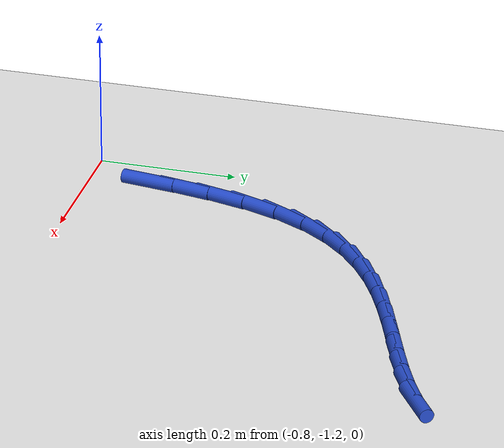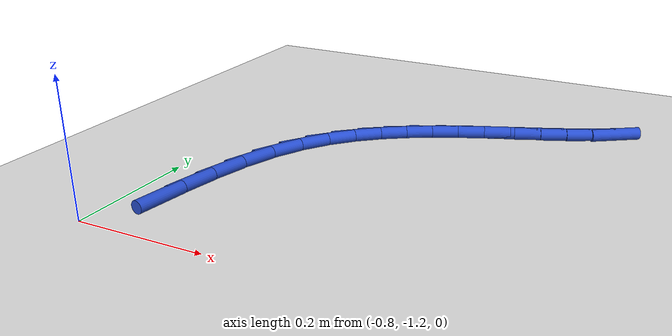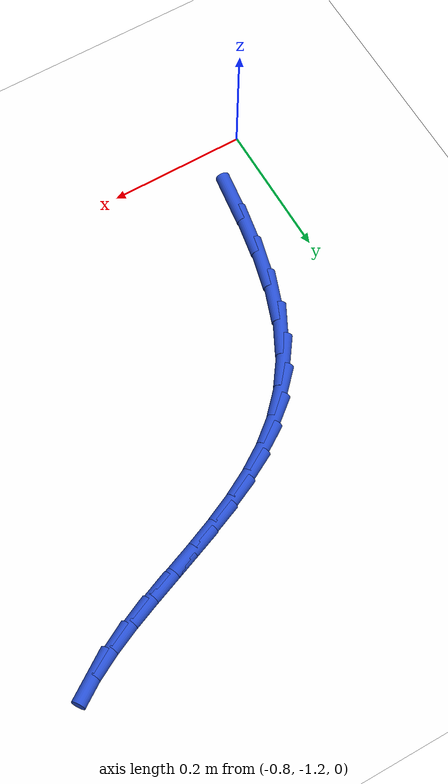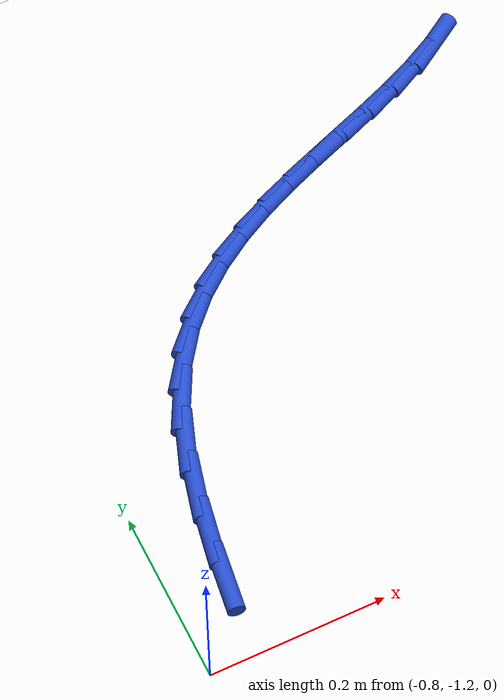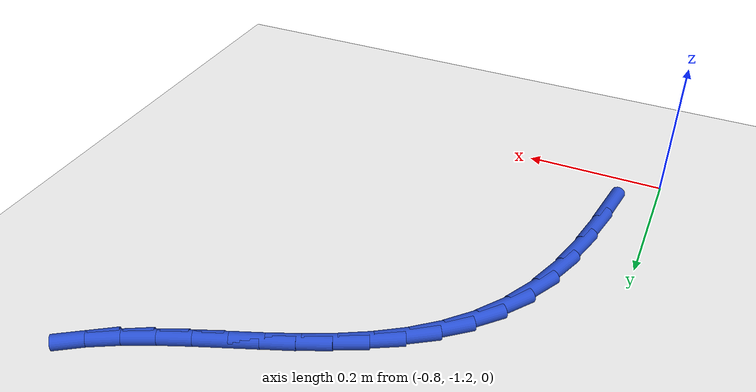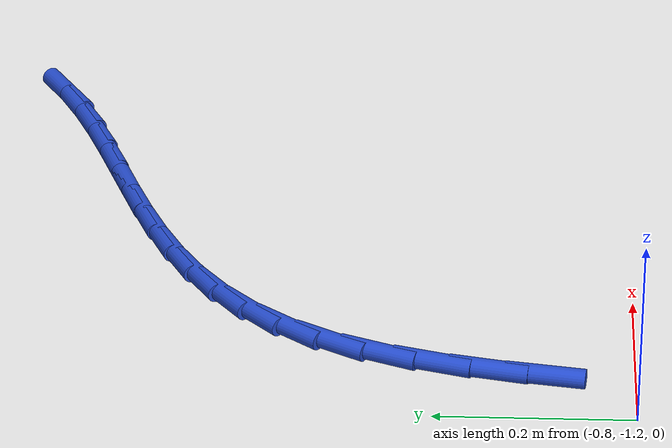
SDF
<sdf version="1.6">
 <world name="default">
  <model name="ground_plane">
   <static>1</static>
   <link name="link">
    <collision name="collision">
     <geometry><plane><normal>0 0 1</normal><size>100 100</size></plane></geometry>
     <surface><friction><ode><mu>100</mu><mu2>50</mu2></ode></friction></surface>
    </collision>
    <visual name="visual">
     <cast_shadows>0</cast_shadows>
     <geometry><plane><normal>0 0 1</normal><size>100 100</size></plane></geometry>
     <material>
      <script><uri>file://media/materials/scripts/gazebo.material</uri><name>Gazebo/WhiteGlow</name></script>
     </material>
    </visual>
   </link>
  </model>
  <model name="line">
   <link name="link_187">
    <pose>-0.7404574396912533 -1.1108910391670632 0.01 0 1.57 1.4273974359184785</pose>
    <collision name="collision">
     <geometry><cylinder><radius>0.01</radius><length>0.08</length></cylinder></geometry>
    </collision>
    <visual name="visual">
     <material>
      <script><name>Gazebo/Blue</name><uri>file://media/materials/scripts/gazebo.material</uri></script>
     </material>
     <geometry><cylinder><radius>0.01</radius><length>0.08</length></cylinder></geometry>
    </visual>
   </link>
   <link name="link_188">
    <pose>-0.7324410652536167 -1.0553721201183466 0.01 0 1.57 1.3812452352933033</pose>
    <collision name="collision">
     <geometry><cylinder><radius>0.01</radius><length>0.08</length></cylinder></geometry>
    </collision>
    <visual name="visual">
     <material>
      <script><name>Gazebo/Blue</name><uri>file://media/materials/scripts/gazebo.material</uri></script>
     </material>
     <geometry><cylinder><radius>0.01</radius><length>0.08</length></cylinder></geometry>
    </visual>
   </link>
   <link name="link_189">
    <pose>-0.7217941652011899 -0.9998774222187625 0.01 0 1.57 1.3144433942980338</pose>
    <collision name="collision">
     <geometry><cylinder><radius>0.01</radius><length>0.08</length></cylinder></geometry>
    </collision>
    <visual name="visual">
     <material>
      <script><name>Gazebo/Blue</name><uri>file://media/materials/scripts/gazebo.material</uri></script>
     </material>
     <geometry><cylinder><radius>0.01</radius><length>0.08</length></cylinder></geometry>
    </visual>
   </link>
   <link name="link_190">
    <pose>-0.7078307784982537 -0.9466064821896515 0.01 0 1.57 1.2183588221415427</pose>
    <collision name="collision">
     <geometry><cylinder><radius>0.01</radius><length>0.08</length></cylinder></geometry>
    </collision>
    <visual name="visual">
     <material>
      <script><name>Gazebo/Blue</name><uri>file://media/materials/scripts/gazebo.material</uri></script>
     </material>
     <geometry><cylinder><radius>0.01</radius><length>0.08</length></cylinder></geometry>
    </visual>
   </link>
   <link name="link_191">
    <pose>-0.6898649441155262 -0.8977588367371618 0.01 0 1.57 1.0869649158053376</pose>
    <collision name="collision">
     <geometry><cylinder><radius>0.01</radius><length>0.08</length></cylinder></geometry>
    </collision>
    <visual name="visual">
     <material>
      <script><name>Gazebo/Blue</name><uri>file://media/materials/scripts/gazebo.material</uri></script>
     </material>
     <geometry><cylinder><radius>0.01</radius><length>0.08</length></cylinder></geometry>
    </visual>
   </link>
   <link name="link_192">
    <pose>-0.6674184219306856 -0.8550434615991679 0.01 0 1.57 0.9454600433406433</pose>
    <collision name="collision">
     <geometry><cylinder><radius>0.01</radius><length>0.08</length></cylinder></geometry>
    </collision>
    <visual name="visual">
     <material>
      <script><name>Gazebo/Blue</name><uri>file://media/materials/scripts/gazebo.material</uri></script>
     </material>
     <geometry><cylinder><radius>0.01</radius><length>0.08</length></cylinder></geometry>
    </visual>
   </link>
   <link name="link_193">
    <pose>-0.6408360391967584 -0.8182255477760975 0.01 0 1.57 0.8091300124559695</pose>
    <collision name="collision">
     <geometry><cylinder><radius>0.01</radius><length>0.08</length></cylinder></geometry>
    </collision>
    <visual name="visual">
     <material>
      <script><name>Gazebo/Blue</name><uri>file://media/materials/scripts/gazebo.material</uri></script>
     </material>
     <geometry><cylinder><radius>0.01</radius><length>0.08</length></cylinder></geometry>
    </visual>
   </link>
   <link name="link_194">
    <pose>-0.6106664542948553 -0.7865889115381237 0.01 0 1.57 0.685752153177361</pose>
    <collision name="collision">
     <geometry><cylinder><radius>0.01</radius><length>0.08</length></cylinder></geometry>
    </collision>
    <visual name="visual">
     <material>
      <script><name>Gazebo/Blue</name><uri>file://media/materials/scripts/gazebo.material</uri></script>
     </material>
     <geometry><cylinder><radius>0.01</radius><length>0.08</length></cylinder></geometry>
    </visual>
   </link>
   <link name="link_195">
    <pose>-0.5774583256060867 -0.7594173691554199 0.01 0 1.57 0.5806743178375131</pose>
    <collision name="collision">
     <geometry><cylinder><radius>0.01</radius><length>0.08</length></cylinder></geometry>
    </collision>
    <visual name="visual">
     <material>
      <script><name>Gazebo/Blue</name><uri>file://media/materials/scripts/gazebo.material</uri></script>
     </material>
     <geometry><cylinder><radius>0.01</radius><length>0.08</length></cylinder></geometry>
    </visual>
   </link>
   <link name="link_196">
    <pose>-0.5417603115115651 -0.7359947368981612 0.01 0 1.57 0.49646349775597653</pose>
    <collision name="collision">
     <geometry><cylinder><radius>0.01</radius><length>0.08</length></cylinder></geometry>
    </collision>
    <visual name="visual">
     <material>
      <script><name>Gazebo/Blue</name><uri>file://media/materials/scripts/gazebo.material</uri></script>
     </material>
     <geometry><cylinder><radius>0.01</radius><length>0.08</length></cylinder></geometry>
    </visual>
   </link>
   <link name="link_197">
    <pose>-0.5041210703924011 -0.7156048310365211 0.01 0 1.57 0.43364648303000447</pose>
    <collision name="collision">
     <geometry><cylinder><radius>0.01</radius><length>0.08</length></cylinder></geometry>
    </collision>
    <visual name="visual">
     <material>
      <script><name>Gazebo/Blue</name><uri>file://media/materials/scripts/gazebo.material</uri></script>
     </material>
     <geometry><cylinder><radius>0.01</radius><length>0.08</length></cylinder></geometry>
    </visual>
   </link>
   <link name="link_198">
    <pose>-0.46508926062970535 -0.6975314678406729 0.01 0 1.57 0.39175559870059357</pose>
    <collision name="collision">
     <geometry><cylinder><radius>0.01</radius><length>0.08</length></cylinder></geometry>
    </collision>
    <visual name="visual">
     <material>
      <script><name>Gazebo/Blue</name><uri>file://media/materials/scripts/gazebo.material</uri></script>
     </material>
     <geometry><cylinder><radius>0.01</radius><length>0.08</length></cylinder></geometry>
    </visual>
   </link>
   <link name="link_199">
    <pose>-0.42521354060458805 -0.6810584635807897 0.01 0 1.57 0.3701728548072419</pose>
    <collision name="collision">
     <geometry><cylinder><radius>0.01</radius><length>0.08</length></cylinder></geometry>
    </collision>
    <visual name="visual">
     <material>
      <script><name>Gazebo/Blue</name><uri>file://media/materials/scripts/gazebo.material</uri></script>
     </material>
     <geometry><cylinder><radius>0.01</radius><length>0.08</length></cylinder></geometry>
    </visual>
   </link>
   <link name="link_200">
    <pose>-0.3850425686981623 -0.6654696345270471 0.01 0 1.57 0.36865539861676905</pose>
    <collision name="collision">
     <geometry><cylinder><radius>0.01</radius><length>0.08</length></cylinder></geometry>
    </collision>
    <visual name="visual">
     <material>
      <script><name>Gazebo/Blue</name><uri>file://media/materials/scripts/gazebo.material</uri></script>
     </material>
     <geometry><cylinder><radius>0.01</radius><length>0.08</length></cylinder></geometry>
    </visual>
   </link>
   <link name="link_201">
    <pose>-0.3451250032915379 -0.6500487969496174 0.01 0 1.57 0.38760092926293344</pose>
    <collision name="collision">
     <geometry><cylinder><radius>0.01</radius><length>0.08</length></cylinder></geometry>
    </collision>
    <visual name="visual">
     <material>
      <script><name>Gazebo/Blue</name><uri>file://media/materials/scripts/gazebo.material</uri></script>
     </material>
     <geometry><cylinder><radius>0.01</radius><length>0.08</length></cylinder></geometry>
    </visual>
   </link>
   <link name="link_202">
    <pose>-0.30600950276582606 -0.6340797671186751 0.01 0 1.57 0.428109963955243</pose>
    <collision name="collision">
     <geometry><cylinder><radius>0.01</radius><length>0.08</length></cylinder></geometry>
    </collision>
    <visual name="visual">
     <material>
      <script><name>Gazebo/Blue</name><uri>file://media/materials/scripts/gazebo.material</uri></script>
     </material>
     <geometry><cylinder><radius>0.01</radius><length>0.08</length></cylinder></geometry>
    </visual>
   </link>
   <link name="link_203">
    <pose>-0.268244725502137 -0.6168463613043932 0.01 0 1.57 0.49181699101750936</pose>
    <collision name="collision">
     <geometry><cylinder><radius>0.01</radius><length>0.08</length></cylinder></geometry>
    </collision>
    <visual name="visual">
     <material>
      <script><name>Gazebo/Blue</name><uri>file://media/materials/scripts/gazebo.material</uri></script>
     </material>
     <geometry><cylinder><radius>0.01</radius><length>0.08</length></cylinder></geometry>
    </visual>
   </link>
   <link name="link_204">
    <pose>-0.23237932988158336 -0.597632395776946 0.01 0 1.57 0.5803498230308506</pose>
    <collision name="collision">
     <geometry><cylinder><radius>0.01</radius><length>0.08</length></cylinder></geometry>
    </collision>
    <visual name="visual">
     <material>
      <script><name>Gazebo/Blue</name><uri>file://media/materials/scripts/gazebo.material</uri></script>
     </material>
     <geometry><cylinder><radius>0.01</radius><length>0.08</length></cylinder></geometry>
    </visual>
   </link>
  </model>
 </world>
</sdf>
